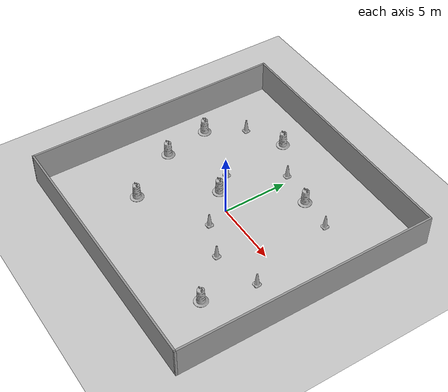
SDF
<sdf version="1.7">
 <world name="default">
  <light name="sun" type="directional">
   <pose>0 0 10 0 -0 0</pose>
   <diffuse>0.8 0.8 0.8 1</diffuse>
   <specular>0.2 0.2 0.2 1</specular>
   <attenuation>
    <range>1000</range>
    <constant>0.9</constant>
    <linear>0.01</linear>
    <quadratic>0.001</quadratic>
   </attenuation>
   <direction>-0.5 0.1 -0.9</direction>
   <spot><inner_angle>0</inner_angle><outer_angle>0</outer_angle><falloff>0</falloff></spot>
  </light>
  <model name="ground_plane">
   <static>1</static>
   <link name="link">
    <collision name="collision">
     <geometry><plane><normal>0 0 1</normal><size>100 100</size></plane></geometry>
     <surface><friction><ode><mu>100</mu><mu2>50</mu2></ode></friction></surface>
    </collision>
    <visual name="visual">
     <cast_shadows>0</cast_shadows>
     <geometry><plane><normal>0 0 1</normal><size>100 100</size></plane></geometry>
     <material>
      <script><uri>file://media/materials/scripts/gazebo.material</uri><name>Gazebo/Grey</name></script>
     </material>
    </visual>
   </link>
  </model>
  <gravity>0 0 -9.8</gravity>
  <magnetic_field>6e-06 2.3e-05 -4.2e-05</magnetic_field>
  <atmosphere type="adiabatic"/>
  <physics type="ode">
   <max_step_size>0.001</max_step_size>
   <real_time_factor>1</real_time_factor>
   <real_time_update_rate>1000</real_time_update_rate>
  </physics>
  <scene><ambient>0.4 0.4 0.4 1</ambient><background>0.7 0.7 0.7 1</background><shadows>1</shadows></scene>
  <audio><device>default</device></audio>
  <spherical_coordinates>
   <surface_model>EARTH_WGS84</surface_model>
   <latitude_deg>0</latitude_deg>
   <longitude_deg>0</longitude_deg>
   <elevation>0</elevation>
   <heading_deg>0</heading_deg>
  </spherical_coordinates>
  <model name="pista_cerrada">
   <pose>-0.039057 0.000665 0 0 -0 0</pose>
   <link name="Wall_18">
    <collision name="Wall_18_Collision">
     <geometry><box><size>20 0.15 2.5</size></box></geometry>
     <pose>0 0 1.25 0 -0 0</pose>
    </collision>
    <visual name="Wall_18_Visual">
     <pose>0 0 1.25 0 -0 0</pose>
     <geometry><box><size>20 0.15 2.5</size></box></geometry>
     <material>
      <script><uri>file://media/materials/scripts/gazebo.material</uri><name>Gazebo/Grey</name></script>
      <ambient>1 1 1 1</ambient>
     </material>
     <meta><layer>0</layer></meta>
    </visual>
    <pose>-0 -9.925 0 0 -0 0</pose>
    <kinematic>1</kinematic>
   </link>
   <link name="Wall_20">
    <collision name="Wall_20_Collision">
     <geometry><box><size>20 0.15 2.5</size></box></geometry>
     <pose>0 0 1.25 0 -0 0</pose>
    </collision>
    <visual name="Wall_20_Visual">
     <pose>0 0 1.25 0 -0 0</pose>
     <geometry><box><size>20 0.15 2.5</size></box></geometry>
     <material>
      <script><uri>file://media/materials/scripts/gazebo.material</uri><name>Gazebo/Grey</name></script>
      <ambient>1 1 1 1</ambient>
     </material>
     <meta><layer>0</layer></meta>
    </visual>
    <pose>-9.925 -0 0 0 -0 1.5708</pose>
   </link>
   <link name="Wall_22">
    <collision name="Wall_22_Collision">
     <geometry><box><size>20 0.15 2.5</size></box></geometry>
     <pose>0 0 1.25 0 -0 0</pose>
    </collision>
    <visual name="Wall_22_Visual">
     <pose>0 0 1.25 0 -0 0</pose>
     <geometry><box><size>20 0.15 2.5</size></box></geometry>
     <material>
      <script><uri>file://media/materials/scripts/gazebo.material</uri><name>Gazebo/Grey</name></script>
      <ambient>1 1 1 1</ambient>
     </material>
     <meta><layer>0</layer></meta>
    </visual>
    <pose>-0 9.925 0 0 -0 0</pose>
   </link>
   <link name="Wall_25">
    <collision name="Wall_25_Collision">
     <geometry><box><size>20 0.15 2.5</size></box></geometry>
     <pose>0 0 1.25 0 -0 0</pose>
    </collision>
    <visual name="Wall_25_Visual">
     <pose>0 0 1.25 0 -0 0</pose>
     <geometry><box><size>20 0.15 2.5</size></box></geometry>
     <material>
      <script><uri>file://media/materials/scripts/gazebo.material</uri><name>Gazebo/Grey</name></script>
      <ambient>1 1 1 1</ambient>
     </material>
     <meta><layer>0</layer></meta>
    </visual>
    <pose>9.925 -0 0 0 -0 -1.5708</pose>
   </link>
   <static>1</static>
  </model>
  <model name="Construction Cone">
   <link name="link">
    <collision name="collision">
     <geometry>
      <mesh><scale>10 10 10</scale><uri>model://construction_cone/meshes/construction_cone.dae</uri></mesh>
     </geometry>
    </collision>
    <visual name="visual">
     <geometry>
      <mesh><scale>10 10 10</scale><uri>model://construction_cone/meshes/construction_cone.dae</uri></mesh>
     </geometry>
    </visual>
    <inertial>
     <inertia><ixx>1</ixx><ixy>0</ixy><ixz>0</ixz><iyy>1</iyy><iyz>0</iyz><izz>1</izz></inertia>
     <mass>1</mass>
    </inertial>
   </link>
   <pose>3.24119 -2.81382 -0 0 -1e-06 0</pose>
  </model>
  <model name="Construction Cone_clone">
   <link name="link">
    <collision name="collision">
     <geometry>
      <mesh><scale>10 10 10</scale><uri>model://construction_cone/meshes/construction_cone.dae</uri></mesh>
     </geometry>
    </collision>
    <visual name="visual">
     <geometry>
      <mesh><scale>10 10 10</scale><uri>model://construction_cone/meshes/construction_cone.dae</uri></mesh>
     </geometry>
    </visual>
    <inertial>
     <inertia><ixx>1</ixx><ixy>0</ixy><ixz>0</ixz><iyy>1</iyy><iyz>0</iyz><izz>1</izz></inertia>
     <mass>1</mass>
    </inertial>
   </link>
   <pose>0.525636 -1.70257 -0 0 -1e-06 0</pose>
  </model>
  <model name="Construction Cone_clone_0">
   <link name="link">
    <collision name="collision">
     <geometry>
      <mesh><scale>10 10 10</scale><uri>model://construction_cone/meshes/construction_cone.dae</uri></mesh>
     </geometry>
    </collision>
    <visual name="visual">
     <geometry>
      <mesh><scale>10 10 10</scale><uri>model://construction_cone/meshes/construction_cone.dae</uri></mesh>
     </geometry>
    </visual>
    <inertial>
     <inertia><ixx>1</ixx><ixy>0</ixy><ixz>0</ixz><iyy>1</iyy><iyz>0</iyz><izz>1</izz></inertia>
     <mass>1</mass>
    </inertial>
   </link>
   <pose>-3 2 -0 0 -1e-06 0</pose>
  </model>
  <model name="Construction Cone_clone_1">
   <link name="link">
    <collision name="collision">
     <geometry>
      <mesh><scale>10 10 10</scale><uri>model://construction_cone/meshes/construction_cone.dae</uri></mesh>
     </geometry>
    </collision>
    <visual name="visual">
     <geometry>
      <mesh><scale>10 10 10</scale><uri>model://construction_cone/meshes/construction_cone.dae</uri></mesh>
     </geometry>
    </visual>
    <inertial>
     <inertia><ixx>1</ixx><ixy>0</ixy><ixz>0</ixz><iyy>1</iyy><iyz>0</iyz><izz>1</izz></inertia>
     <mass>1</mass>
    </inertial>
   </link>
   <pose>6.71571 -1.87082 -0 0 -1e-06 0</pose>
  </model>
  <model name="Construction Cone_clone_2">
   <link name="link">
    <collision name="collision">
     <geometry>
      <mesh><scale>10 10 10</scale><uri>model://construction_cone/meshes/construction_cone.dae</uri></mesh>
     </geometry>
    </collision>
    <visual name="visual">
     <geometry>
      <mesh><scale>10 10 10</scale><uri>model://construction_cone/meshes/construction_cone.dae</uri></mesh>
     </geometry>
    </visual>
    <inertial>
     <inertia><ixx>1</ixx><ixy>0</ixy><ixz>0</ixz><iyy>1</iyy><iyz>0</iyz><izz>1</izz></inertia>
     <mass>1</mass>
    </inertial>
   </link>
   <pose>5 5 -0 0 -1e-06 0</pose>
  </model>
  <model name="Construction Cone_clone_3">
   <link name="link">
    <collision name="collision">
     <geometry>
      <mesh><scale>10 10 10</scale><uri>model://construction_cone/meshes/construction_cone.dae</uri></mesh>
     </geometry>
    </collision>
    <visual name="visual">
     <geometry>
      <mesh><scale>10 10 10</scale><uri>model://construction_cone/meshes/construction_cone.dae</uri></mesh>
     </geometry>
    </visual>
    <inertial>
     <inertia><ixx>1</ixx><ixy>0</ixy><ixz>0</ixz><iyy>1</iyy><iyz>0</iyz><izz>1</izz></inertia>
     <mass>1</mass>
    </inertial>
   </link>
   <pose>-0.525693 5.69638 -1e-05 0 -0 0</pose>
  </model>
  <model name="Construction Cone_clone_4">
   <link name="link">
    <collision name="collision">
     <geometry>
      <mesh><scale>10 10 10</scale><uri>model://construction_cone/meshes/construction_cone.dae</uri></mesh>
     </geometry>
    </collision>
    <visual name="visual">
     <geometry>
      <mesh><scale>10 10 10</scale><uri>model://construction_cone/meshes/construction_cone.dae</uri></mesh>
     </geometry>
    </visual>
    <inertial>
     <inertia><ixx>1</ixx><ixy>0</ixy><ixz>0</ixz><iyy>1</iyy><iyz>0</iyz><izz>1</izz></inertia>
     <mass>1</mass>
    </inertial>
   </link>
   <pose>-6.32236 5.91167 -0 1e-06 -0 0</pose>
  </model>
  <model name="Construction Barrel">
   <link name="link">
    <inertial>
     <pose>0 0 0.4 0 -0 0</pose>
     <mass>500</mass>
     <inertia><ixx>51.2096</ixx><iyy>51.2096</iyy><izz>25</izz><ixy>0</ixy><ixz>0</ixz><iyz>0</iyz></inertia>
    </inertial>
    <collision name="collision">
     <geometry><mesh><uri>model://construction_barrel/meshes/construction_barrel.dae</uri></mesh></geometry>
    </collision>
    <visual name="visual">
     <geometry><mesh><uri>model://construction_barrel/meshes/construction_barrel.dae</uri></mesh></geometry>
    </visual>
   </link>
   <pose>2.33636 5.2201 -1e-06 -3e-06 -1e-06 -1e-05</pose>
  </model>
  <model name="Construction Barrel_clone">
   <link name="link">
    <inertial>
     <pose>0 0 0.4 0 -0 0</pose>
     <mass>500</mass>
     <inertia><ixx>51.2096</ixx><iyy>51.2096</iyy><izz>25</izz><ixy>0</ixy><ixz>0</ixz><iyz>0</iyz></inertia>
    </inertial>
    <collision name="collision">
     <geometry><mesh><uri>model://construction_barrel/meshes/construction_barrel.dae</uri></mesh></geometry>
    </collision>
    <visual name="visual">
     <geometry><mesh><uri>model://construction_barrel/meshes/construction_barrel.dae</uri></mesh></geometry>
    </visual>
   </link>
   <pose>-4.63939 -4.61558 -4e-06 -5e-06 -7e-06 -9e-06</pose>
  </model>
  <model name="Construction Barrel_clone_0">
   <link name="link">
    <inertial>
     <pose>0 0 0.4 0 -0 0</pose>
     <mass>500</mass>
     <inertia><ixx>51.2096</ixx><iyy>51.2096</iyy><izz>25</izz><ixy>0</ixy><ixz>0</ixz><iyz>0</iyz></inertia>
    </inertial>
    <collision name="collision">
     <geometry><mesh><uri>model://construction_barrel/meshes/construction_barrel.dae</uri></mesh></geometry>
    </collision>
    <visual name="visual">
     <geometry><mesh><uri>model://construction_barrel/meshes/construction_barrel.dae</uri></mesh></geometry>
    </visual>
   </link>
   <pose>-7.26794 -0.489898 -2e-06 8e-06 -4e-06 -9e-06</pose>
  </model>
  <model name="Construction Barrel_clone_1">
   <link name="link">
    <inertial>
     <pose>0 0 0.4 0 -0 0</pose>
     <mass>500</mass>
     <inertia><ixx>51.2096</ixx><iyy>51.2096</iyy><izz>25</izz><ixy>0</ixy><ixz>0</ixz><iyz>0</iyz></inertia>
    </inertial>
    <collision name="collision">
     <geometry><mesh><uri>model://construction_barrel/meshes/construction_barrel.dae</uri></mesh></geometry>
    </collision>
    <visual name="visual">
     <geometry><mesh><uri>model://construction_barrel/meshes/construction_barrel.dae</uri></mesh></geometry>
    </visual>
   </link>
   <pose>5.91094 -5.70648 -1e-06 -3e-06 -1e-06 -1.1e-05</pose>
  </model>
  <model name="Construction Barrel_clone_2">
   <link name="link">
    <inertial>
     <pose>0 0 0.4 0 -0 0</pose>
     <mass>500</mass>
     <inertia><ixx>51.2096</ixx><iyy>51.2096</iyy><izz>25</izz><ixy>0</ixy><ixz>0</ixz><iyz>0</iyz></inertia>
    </inertial>
    <collision name="collision">
     <geometry><mesh><uri>model://construction_barrel/meshes/construction_barrel.dae</uri></mesh></geometry>
    </collision>
    <visual name="visual">
     <geometry><mesh><uri>model://construction_barrel/meshes/construction_barrel.dae</uri></mesh></geometry>
    </visual>
   </link>
   <pose>-1.87672 0.644262 1e-06 6e-06 7e-06 -1.3e-05</pose>
  </model>
  <model name="Construction Barrel_clone_3">
   <link name="link">
    <inertial>
     <pose>0 0 0.4 0 -0 0</pose>
     <mass>500</mass>
     <inertia><ixx>51.2096</ixx><iyy>51.2096</iyy><izz>25</izz><ixy>0</ixy><ixz>0</ixz><iyz>0</iyz></inertia>
    </inertial>
    <collision name="collision">
     <geometry><mesh><uri>model://construction_barrel/meshes/construction_barrel.dae</uri></mesh></geometry>
    </collision>
    <visual name="visual">
     <geometry><mesh><uri>model://construction_barrel/meshes/construction_barrel.dae</uri></mesh></geometry>
    </visual>
   </link>
   <pose>-7.97281 3.16102 -1e-06 3e-06 -0 -1e-05</pose>
  </model>
  <model name="Construction Barrel_clone_4">
   <link name="link">
    <inertial>
     <pose>0 0 0.4 0 -0 0</pose>
     <mass>500</mass>
     <inertia><ixx>51.2096</ixx><iyy>51.2096</iyy><izz>25</izz><ixy>0</ixy><ixz>0</ixz><iyz>0</iyz></inertia>
    </inertial>
    <collision name="collision">
     <geometry><mesh><uri>model://construction_barrel/meshes/construction_barrel.dae</uri></mesh></geometry>
    </collision>
    <visual name="visual">
     <geometry><mesh><uri>model://construction_barrel/meshes/construction_barrel.dae</uri></mesh></geometry>
    </visual>
   </link>
   <pose>-3.48427 7.3807 -2e-06 6e-06 -3e-06 -1.1e-05</pose>
  </model>
 </world>
</sdf>
